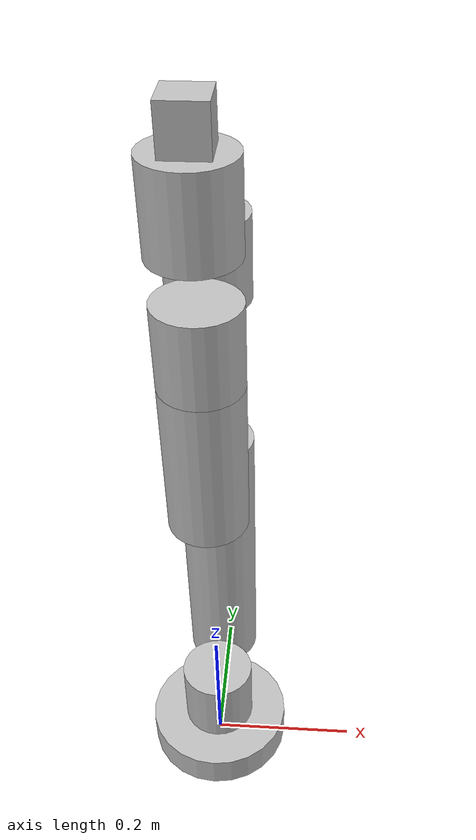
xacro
<?xml version="1.0"?>
<robot xmlns:xacro="http://www.ros.org/wiki/xacro" name="bob_manip">
    <xacro:arg name="initial_positions_file" default="initial_positions.yaml" />

    <!-- Import bob_manip urdf file -->
    <xacro:include filename="$(find rob_manip_description)/urdf/bob_manip.urdf" />

    <!-- Import control_xacro -->
    <xacro:include filename="bob_manip.ros2_control.xacro" />

    <xacro:bob_manip_ros2_control name="GazeboSimSystem" initial_positions_file="$(arg initial_positions_file)"/>

</robot>

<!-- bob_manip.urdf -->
<robot name="bob_manip">
    <link name="base_link">
        <visual>
            <geometry>
                <cylinder length="0.05" radius="0.1"/>
            </geometry>
            <material name="silver">
                <color rgba="0.75 0.75 0.75 1"/>
            </material>
            <origin rpy="0.0 0 0" xyz="0 0 0.025"/>
        </visual>
        <collision>
            <geometry>
                <cylinder length="0.05" radius="0.1"/>
            </geometry>
            <origin rpy="0.0 0 0" xyz="0 0 0.025"/>
        </collision>
        <inertial>
            <mass value="1.0"/>
            <inertia ixx="0.0027" iyy="0.0027" izz="0.005" ixy="0" ixz="0" iyz="0"/>
            <origin rpy="0.0 0 0" xyz="0 0 0.025"/>
        </inertial>
    </link>

    <link name="world"/>
        <joint name="fixed" type="fixed">
        <parent link="world"/>
        <child link="base_link"/>
    </joint>

    <link name="torso">
        <visual>
            <geometry>
                <cylinder length="0.1" radius="0.05"/>
            </geometry>
            <material name="silver">
                <color rgba="0.75 0.75 0.75 1"/>
            </material>
            <origin rpy="0.0 0 0" xyz="0 0 0.05"/>
        </visual>
        <collision>
            <geometry>
                <cylinder length="0.1" radius="0.05"/>
            </geometry>
            <origin rpy="0.0 0 0" xyz="0 0 0.05"/>
        </collision>
        <inertial>
            <mass value="1.0"/>
            <inertia ixx="0.00145" iyy="0.00145" izz="0.00125" ixy="0" ixz="0" iyz="0"/>
            <origin rpy="0.0 0 0" xyz="0 0 0.05"/>
        </inertial>
    </link>

    <joint name="hip" type="continuous">
        <axis xyz="0 0 1"/>
        <parent link="base_link"/>
        <child link="torso"/>
        <origin rpy="0 0 0" xyz="0.0 0.0 0.05"/>
    </joint>

    <link name="upper_arm">
        <visual>
            <geometry>
                <cylinder length="0.4" radius="0.05"/>
            </geometry>
            <material name="silver">
                <color rgba="0.75 0.75 0.75 1"/>
            </material>
            <origin rpy="0.0 0 0" xyz="0 0 0.2"/>
        </visual>
        <collision>
            <geometry>
                <cylinder length="0.4" radius="0.05"/>
            </geometry>
            <origin rpy="0.0 0 0" xyz="0 0 0.2"/>
        </collision>
        <inertial>
            <mass value="1.0"/>
            <inertia ixx="0.01396" iyy="0.01396" izz="0.00125" ixy="0" ixz="0" iyz="0"/>
            <origin rpy="0.0 0 0" xyz="0 0 0.2"/>
        </inertial>
    </link>

    <joint name="shoulder" type="continuous">
        <axis xyz="0 1 0"/>
        <parent link="torso"/>
        <child link="upper_arm"/>
        <origin rpy="0 0 0" xyz="0 0.1 0.05"/>
    </joint>

    <link name="lower_arm">
    <visual>
    <geometry>
    <cylinder length="0.2" radius="0.05"/>
    </geometry>
    <material name="silver">
    <color rgba="0.75 0.75 0.75 1"/>
    </material>
    <origin rpy="0.0 0 0" xyz="0 0 0.1"/>
    </visual>
    <collision>
    <geometry>
    <cylinder length="0.2" radius="0.05"/>
    </geometry>
    <origin rpy="0.0 0 0" xyz="0 0 0.1"/>
    </collision>
    <inertial>
    <mass value="1.0"/>
    <inertia ixx="0.01396" iyy="0.01396" izz="0.00125" ixy="0" ixz="0" iyz="0"/>
    <origin rpy="0.0 0 0" xyz="0 0 0.1"/>
    </inertial>
    </link>

    <link name="lower_arm_2">
    <visual>
    <geometry>
    <cylinder length="0.1" radius="0.05"/>
    </geometry>
    <material name="silver">
    <color rgba="0.75 0.75 0.75 1"/>
    </material>
    <origin rpy="0.0 0 0" xyz="0 0 0.05"/>
    </visual>
    <collision>
    <geometry>
    <cylinder length="0.1" radius="0.05"/>
    </geometry>
    <origin rpy="0.0 0 0" xyz="0 0 0.05"/>
    </collision>
    <inertial>
    <mass value="0.5"/>
    <inertia ixx="0.01396" iyy="0.01396" izz="0.00125" ixy="0" ixz="0" iyz="0"/>
    <origin rpy="0.0 0 0" xyz="0 0 0.1"/>
    </inertial>
    </link>

    <link name="lower_arm_3">
    <visual>
    <geometry>
    <cylinder length="0.1" radius="0.05"/>
    </geometry>
    <material name="silver">
    <color rgba="0.75 0.75 0.75 1"/>
    </material>
    <origin rpy="0.0 0 0" xyz="0 0 0.05"/>
    </visual>
    <collision>
    <geometry>
    <cylinder length="0.1" radius="0.05"/>
    </geometry>
    <origin rpy="0.0 0 0" xyz="0 0 0.05"/>
    </collision>
    <inertial>
    <mass value="0.5"/>
    <inertia ixx="0.01396" iyy="0.01396" izz="0.00125" ixy="0" ixz="0" iyz="0"/>
    <origin rpy="0.0 0 0" xyz="0 0 0.1"/>
    </inertial>
    </link>

    <link name="lower_arm_4">
    <visual>
    <geometry>
    <cylinder length="0.1" radius="0.05"/>
    </geometry>
    <material name="silver">
    <color rgba="0.75 0.75 0.75 1"/>
    </material>
    <origin rpy="0.0 0 0" xyz="0 0 0.05"/>
    </visual>
    <collision>
    <geometry>
    <cylinder length="0.1" radius="0.05"/>
    </geometry>
    <origin rpy="0.0 0 0" xyz="0 0 0.05"/>
    </collision>
    <inertial>
    <mass value="0.5"/>
    <inertia ixx="0.01396" iyy="0.01396" izz="0.00125" ixy="0" ixz="0" iyz="0"/>
    <origin rpy="0.0 0 0" xyz="0 0 0.1"/>
    </inertial>
    </link>

    <joint name="elbow" type="continuous">
        <axis xyz="0 1 0"/>
        <parent link="upper_arm"/>
        <child link="lower_arm"/>
        <origin rpy="0 0 0" xyz="0.0 -0.1 0.35"/>
    </joint>

    <joint name="elbow_2" type="continuous">
    <axis xyz="0 0 1"/>
    <parent link="lower_arm"/>
    <child link="lower_arm_2"/>
    <origin rpy="0 0 0" xyz="0.0 0.0 0.2"/>
    </joint>
    <joint name="elbow_3" type="continuous">
    <axis xyz="0 1 0"/>
    <parent link="lower_arm_2"/>
    <child link="lower_arm_3"/>
    <origin rpy="0 0 0" xyz="0.0 0.1 0.05"/>
    </joint>
    <joint name="elbow_4" type="continuous">
    <axis xyz="0 1 0"/>
    <parent link="lower_arm_3"/>
    <child link="lower_arm_4"/>
    <origin rpy="0 0 0" xyz="0.0 -0.1 0.1"/>
    </joint>
    <joint name="wrist" type="continuous">
    <axis xyz="0 0 1"/>
    <parent link="lower_arm_4"/>
    <child link="hand"/>
    <origin rpy="0 0 0" xyz="0.0 0.0 0.1"/>
    </joint>

    <link name="hand">
    <visual>
        <geometry>
            <box size="0.05 0.05 0.05"/>
        </geometry>
        <material name="silver">
            <color rgba="0.75 0.75 0.75 1"/>
        </material>
        <origin rpy="0.0 0 0" xyz="0 0 0.025"/>
    </visual>
    <collision>
        <geometry>
            <box size="0.05 0.05 0.05"/>
        </geometry>
        <origin rpy="0.0 0 0" xyz="0 0 0.025"/>
    </collision>
    <inertial>
        <mass value="1.0"/>
        <inertia ixx="0.00042" iyy="0.00042" izz="0.00042" ixy="0" ixz="0" iyz="0"/>
        <origin rpy="0.0 0 0" xyz="0 0 0.025"/>
    </inertial>
    </link>

    <gazebo reference="base_link">
        <material>Gazebo/Chrome</material>
    </gazebo>
    <gazebo reference="torso">
        <material>Gazebo/Chrome</material>
    </gazebo>
    <gazebo reference="upper_arm">
        <material>Gazebo/Chrome</material>
    </gazebo>
    <gazebo reference="lower_arm">
        <material>Gazebo/Chrome</material>
    </gazebo>
    <gazebo reference="lower_arm_2">
        <material>Gazebo/Chrome</material>
    </gazebo>
    <gazebo reference="lower_arm_3">
        <material>Gazebo/Chrome</material>
    </gazebo>
    <gazebo reference="lower_arm_4">
        <material>Gazebo/Chrome</material>
    </gazebo>
    <gazebo reference="hand">
        <material>Gazebo/Chrome</material>
    </gazebo>

    <gazebo>
        <plugin filename="gz_ros2_control-system" name="gz_ros2_control::GazeboSimROS2ControlPlugin">
            <parameters>/home/student/Robotics-ROS2/src/nrs-lv2/rob_manip_moveit/config/ros2_controllers.yaml</parameters>
        </plugin>
    </gazebo>

</robot>
